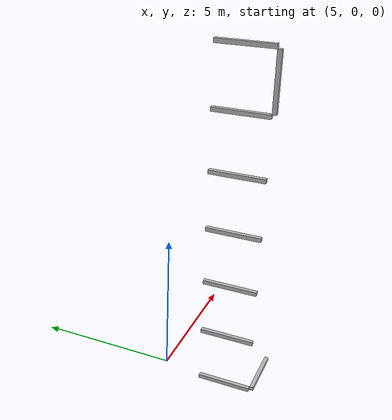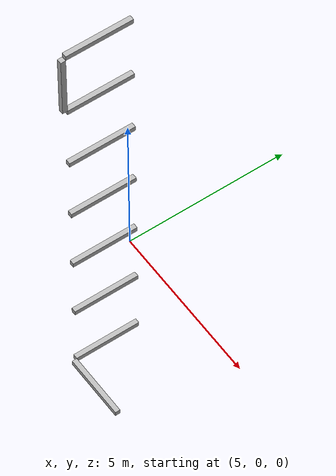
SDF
<sdf version="1.7">
 <world name="default">
  <model name="orthogonal_747_2.000.15_TS">
   <static>1</static>
   <link name="x_link_0_1_6">
    <inertial>
     <mass>1</mass>
     <inertia>
      <ixx>0.166667</ixx>
      <ixy>0</ixy>
      <ixz>0</ixz>
      <iyy>0.166667</iyy>
      <iyz>0</iyz>
      <izz>0.166667</izz>
     </inertia>
    </inertial>
    <pose>13.975 2.15 1.075 0 -0 0</pose>
    <visual name="visual_0">
     <laser_retro>288</laser_retro>
     <geometry><box><size>2 1e-06 0.15</size></box></geometry>
     <material>
      <script><name>Gazebo/Grey</name><uri>file://media/materials/scripts/gazebo.material</uri></script>
      <shader type="pixel"><normal_map>__default__</normal_map></shader>
      <ambient>0.678 0.498 0.659 1</ambient>
      <diffuse>0.7 0.7 0.7 1</diffuse>
      <specular>0.01 0.01 0.01 1</specular>
      <emissive>0 0 0 1</emissive>
     </material>
     <pose>0 -0.075 0 0 -0 0</pose>
     <transparency>1</transparency>
    </visual>
    <visual name="visual_1">
     <laser_retro>289</laser_retro>
     <geometry><box><size>2 1e-06 0.15</size></box></geometry>
     <material>
      <script><name>Gazebo/Grey</name><uri>file://media/materials/scripts/gazebo.material</uri></script>
      <shader type="pixel"><normal_map>__default__</normal_map></shader>
      <ambient>0.447 0.624 0.812 1</ambient>
      <diffuse>0.7 0.7 0.7 1</diffuse>
      <specular>0.01 0.01 0.01 1</specular>
      <emissive>0 0 0 1</emissive>
     </material>
     <pose>0 0.075 0 0 -0 0</pose>
     <transparency>1</transparency>
    </visual>
    <visual name="visual_2">
     <laser_retro>290</laser_retro>
     <geometry><box><size>2 0.15 1e-06</size></box></geometry>
     <material>
      <script><name>Gazebo/Grey</name><uri>file://media/materials/scripts/gazebo.material</uri></script>
      <shader type="pixel"><normal_map>__default__</normal_map></shader>
      <ambient>0.988 0.686 0.243 1</ambient>
      <diffuse>0.7 0.7 0.7 1</diffuse>
      <specular>0.01 0.01 0.01 1</specular>
      <emissive>0 0 0 1</emissive>
     </material>
     <pose>0 0 -0.075 0 -0 0</pose>
     <transparency>1</transparency>
    </visual>
    <visual name="visual_3">
     <laser_retro>291</laser_retro>
     <geometry><box><size>1e-06 0.15 0.15</size></box></geometry>
     <material>
      <script><name>Gazebo/Grey</name><uri>file://media/materials/scripts/gazebo.material</uri></script>
      <shader type="pixel"><normal_map>__default__</normal_map></shader>
      <ambient>0.988 0.914 0.31 1</ambient>
      <diffuse>0.7 0.7 0.7 1</diffuse>
      <specular>0.01 0.01 0.01 1</specular>
      <emissive>0 0 0 1</emissive>
     </material>
     <pose>1 0 0 0 -0 0</pose>
     <transparency>1</transparency>
    </visual>
    <visual name="visual_4">
     <laser_retro>292</laser_retro>
     <geometry><box><size>2 0.15 1e-06</size></box></geometry>
     <material>
      <script><name>Gazebo/Grey</name><uri>file://media/materials/scripts/gazebo.material</uri></script>
      <shader type="pixel"><normal_map>__default__</normal_map></shader>
      <ambient>0.937 0.161 0.161 1</ambient>
      <diffuse>0.7 0.7 0.7 1</diffuse>
      <specular>0.01 0.01 0.01 1</specular>
      <emissive>0 0 0 1</emissive>
     </material>
     <pose>0 0 0.075 0 -0 0</pose>
     <transparency>1</transparency>
    </visual>
    <visual name="visual_5">
     <laser_retro>293</laser_retro>
     <geometry><box><size>1e-06 0.15 0.15</size></box></geometry>
     <material>
      <script><name>Gazebo/Grey</name><uri>file://media/materials/scripts/gazebo.material</uri></script>
      <shader type="pixel"><normal_map>__default__</normal_map></shader>
      <ambient>0.541 0.886 0.204 1</ambient>
      <diffuse>0.7 0.7 0.7 1</diffuse>
      <specular>0.01 0.01 0.01 1</specular>
      <emissive>0 0 0 1</emissive>
     </material>
     <pose>-1 0 0 0 -0 0</pose>
     <transparency>1</transparency>
    </visual>
    <visual name="visual_texture">
     <geometry><box><size>1.9998 0.149985 0.149985</size></box></geometry>
     <material>
      <script>
       <uri>model://BASE_MODELS/simple_block_v2_textured/materials/scripts</uri>
       <uri>model://BASE_MODELS/simple_block_v2_textured/materials/textures</uri>
       <name>metal</name>
      </script>
     </material>
     <laser_retro>294</laser_retro>
    </visual>
    <collision name="collision">
     <geometry><box><size>2 0.15 0.15</size></box></geometry>
     <surface>
      <friction>
       <ode><mu>1</mu><mu2>1</mu2><fdir1>0 0 0</fdir1><slip1>0</slip1><slip2>0</slip2></ode>
       <torsional>
        <coefficient>1</coefficient>
        <patch_radius>0</patch_radius>
        <surface_radius>0</surface_radius>
        <use_patch_radius>1</use_patch_radius>
        <ode><slip>0</slip></ode>
       </torsional>
      </friction>
      <bounce><restitution_coefficient>0</restitution_coefficient><threshold>1e+06</threshold></bounce>
      <contact>
       <collide_without_contact>0</collide_without_contact>
       <collide_without_contact_bitmask>1</collide_without_contact_bitmask>
       <collide_bitmask>1</collide_bitmask>
       <ode>
        <soft_cfm>0</soft_cfm>
        <soft_erp>0.2</soft_erp>
        <kp>1e+13</kp>
        <kd>1</kd>
        <max_vel>0.01</max_vel>
        <min_depth>0</min_depth>
       </ode>
       <bullet>
        <split_impulse>1</split_impulse>
        <split_impulse_penetration_threshold>-0.01</split_impulse_penetration_threshold>
        <soft_cfm>0</soft_cfm>
        <soft_erp>0.2</soft_erp>
        <kp>1e+13</kp>
        <kd>1</kd>
       </bullet>
      </contact>
     </surface>
    </collision>
   </link>
   <link name="y_link_0_1_6">
    <inertial>
     <mass>1</mass>
     <inertia>
      <ixx>0.166667</ixx>
      <ixy>0</ixy>
      <ixz>0</ixz>
      <iyy>0.166667</iyy>
      <iyz>0</iyz>
      <izz>0.166667</izz>
     </inertia>
    </inertial>
    <pose>12.9 3.225 1.075 0 -0 0</pose>
    <visual name="visual_0">
     <laser_retro>295</laser_retro>
     <geometry><box><size>0.15 1e-06 0.15</size></box></geometry>
     <material>
      <script><name>Gazebo/Grey</name><uri>file://media/materials/scripts/gazebo.material</uri></script>
      <shader type="pixel"><normal_map>__default__</normal_map></shader>
      <ambient>0.678 0.498 0.659 1</ambient>
      <diffuse>0.7 0.7 0.7 1</diffuse>
      <specular>0.01 0.01 0.01 1</specular>
      <emissive>0 0 0 1</emissive>
     </material>
     <pose>0 -1 0 0 -0 0</pose>
     <transparency>1</transparency>
    </visual>
    <visual name="visual_1">
     <laser_retro>296</laser_retro>
     <geometry><box><size>0.15 1e-06 0.15</size></box></geometry>
     <material>
      <script><name>Gazebo/Grey</name><uri>file://media/materials/scripts/gazebo.material</uri></script>
      <shader type="pixel"><normal_map>__default__</normal_map></shader>
      <ambient>0.447 0.624 0.812 1</ambient>
      <diffuse>0.7 0.7 0.7 1</diffuse>
      <specular>0.01 0.01 0.01 1</specular>
      <emissive>0 0 0 1</emissive>
     </material>
     <pose>0 1 0 0 -0 0</pose>
     <transparency>1</transparency>
    </visual>
    <visual name="visual_2">
     <laser_retro>297</laser_retro>
     <geometry><box><size>0.15 2 1e-06</size></box></geometry>
     <material>
      <script><name>Gazebo/Grey</name><uri>file://media/materials/scripts/gazebo.material</uri></script>
      <shader type="pixel"><normal_map>__default__</normal_map></shader>
      <ambient>0.988 0.686 0.243 1</ambient>
      <diffuse>0.7 0.7 0.7 1</diffuse>
      <specular>0.01 0.01 0.01 1</specular>
      <emissive>0 0 0 1</emissive>
     </material>
     <pose>0 0 -0.075 0 -0 0</pose>
     <transparency>1</transparency>
    </visual>
    <visual name="visual_3">
     <laser_retro>298</laser_retro>
     <geometry><box><size>1e-06 2 0.15</size></box></geometry>
     <material>
      <script><name>Gazebo/Grey</name><uri>file://media/materials/scripts/gazebo.material</uri></script>
      <shader type="pixel"><normal_map>__default__</normal_map></shader>
      <ambient>0.988 0.914 0.31 1</ambient>
      <diffuse>0.7 0.7 0.7 1</diffuse>
      <specular>0.01 0.01 0.01 1</specular>
      <emissive>0 0 0 1</emissive>
     </material>
     <pose>0.075 0 0 0 -0 0</pose>
     <transparency>1</transparency>
    </visual>
    <visual name="visual_4">
     <laser_retro>299</laser_retro>
     <geometry><box><size>0.15 2 1e-06</size></box></geometry>
     <material>
      <script><name>Gazebo/Grey</name><uri>file://media/materials/scripts/gazebo.material</uri></script>
      <shader type="pixel"><normal_map>__default__</normal_map></shader>
      <ambient>0.937 0.161 0.161 1</ambient>
      <diffuse>0.7 0.7 0.7 1</diffuse>
      <specular>0.01 0.01 0.01 1</specular>
      <emissive>0 0 0 1</emissive>
     </material>
     <pose>0 0 0.075 0 -0 0</pose>
     <transparency>1</transparency>
    </visual>
    <visual name="visual_5">
     <laser_retro>300</laser_retro>
     <geometry><box><size>1e-06 2 0.15</size></box></geometry>
     <material>
      <script><name>Gazebo/Grey</name><uri>file://media/materials/scripts/gazebo.material</uri></script>
      <shader type="pixel"><normal_map>__default__</normal_map></shader>
      <ambient>0.541 0.886 0.204 1</ambient>
      <diffuse>0.7 0.7 0.7 1</diffuse>
      <specular>0.01 0.01 0.01 1</specular>
      <emissive>0 0 0 1</emissive>
     </material>
     <pose>-0.075 0 0 0 -0 0</pose>
     <transparency>1</transparency>
    </visual>
    <visual name="visual_texture">
     <geometry><box><size>0.149985 1.9998 0.149985</size></box></geometry>
     <material>
      <script>
       <uri>model://BASE_MODELS/simple_block_v2_textured/materials/scripts</uri>
       <uri>model://BASE_MODELS/simple_block_v2_textured/materials/textures</uri>
       <name>metal</name>
      </script>
     </material>
     <laser_retro>301</laser_retro>
    </visual>
    <collision name="collision">
     <geometry><box><size>0.15 2 0.15</size></box></geometry>
     <surface>
      <friction>
       <ode><mu>1</mu><mu2>1</mu2><fdir1>0 0 0</fdir1><slip1>0</slip1><slip2>0</slip2></ode>
       <torsional>
        <coefficient>1</coefficient>
        <patch_radius>0</patch_radius>
        <surface_radius>0</surface_radius>
        <use_patch_radius>1</use_patch_radius>
        <ode><slip>0</slip></ode>
       </torsional>
      </friction>
      <bounce><restitution_coefficient>0</restitution_coefficient><threshold>1e+06</threshold></bounce>
      <contact>
       <collide_without_contact>0</collide_without_contact>
       <collide_without_contact_bitmask>1</collide_without_contact_bitmask>
       <collide_bitmask>1</collide_bitmask>
       <ode>
        <soft_cfm>0</soft_cfm>
        <soft_erp>0.2</soft_erp>
        <kp>1e+13</kp>
        <kd>1</kd>
        <max_vel>0.01</max_vel>
        <min_depth>0</min_depth>
       </ode>
       <bullet>
        <split_impulse>1</split_impulse>
        <split_impulse_penetration_threshold>-0.01</split_impulse_penetration_threshold>
        <soft_cfm>0</soft_cfm>
        <soft_erp>0.2</soft_erp>
        <kp>1e+13</kp>
        <kd>1</kd>
       </bullet>
      </contact>
     </surface>
    </collision>
   </link>
   <link name="y_link_1_1_6">
    <inertial>
     <mass>1</mass>
     <inertia>
      <ixx>0.166667</ixx>
      <ixy>0</ixy>
      <ixz>0</ixz>
      <iyy>0.166667</iyy>
      <iyz>0</iyz>
      <izz>0.166667</izz>
     </inertia>
    </inertial>
    <pose>12.9 3.225 3.225 0 -0 0</pose>
    <visual name="visual_0">
     <laser_retro>1107</laser_retro>
     <geometry><box><size>0.15 1e-06 0.15</size></box></geometry>
     <material>
      <script><name>Gazebo/Grey</name><uri>file://media/materials/scripts/gazebo.material</uri></script>
      <shader type="pixel"><normal_map>__default__</normal_map></shader>
      <ambient>0.678 0.498 0.659 1</ambient>
      <diffuse>0.7 0.7 0.7 1</diffuse>
      <specular>0.01 0.01 0.01 1</specular>
      <emissive>0 0 0 1</emissive>
     </material>
     <pose>0 -1 0 0 -0 0</pose>
     <transparency>1</transparency>
    </visual>
    <visual name="visual_1">
     <laser_retro>1108</laser_retro>
     <geometry><box><size>0.15 1e-06 0.15</size></box></geometry>
     <material>
      <script><name>Gazebo/Grey</name><uri>file://media/materials/scripts/gazebo.material</uri></script>
      <shader type="pixel"><normal_map>__default__</normal_map></shader>
      <ambient>0.447 0.624 0.812 1</ambient>
      <diffuse>0.7 0.7 0.7 1</diffuse>
      <specular>0.01 0.01 0.01 1</specular>
      <emissive>0 0 0 1</emissive>
     </material>
     <pose>0 1 0 0 -0 0</pose>
     <transparency>1</transparency>
    </visual>
    <visual name="visual_2">
     <laser_retro>1109</laser_retro>
     <geometry><box><size>0.15 2 1e-06</size></box></geometry>
     <material>
      <script><name>Gazebo/Grey</name><uri>file://media/materials/scripts/gazebo.material</uri></script>
      <shader type="pixel"><normal_map>__default__</normal_map></shader>
      <ambient>0.988 0.686 0.243 1</ambient>
      <diffuse>0.7 0.7 0.7 1</diffuse>
      <specular>0.01 0.01 0.01 1</specular>
      <emissive>0 0 0 1</emissive>
     </material>
     <pose>0 0 -0.075 0 -0 0</pose>
     <transparency>1</transparency>
    </visual>
    <visual name="visual_3">
     <laser_retro>1110</laser_retro>
     <geometry><box><size>1e-06 2 0.15</size></box></geometry>
     <material>
      <script><name>Gazebo/Grey</name><uri>file://media/materials/scripts/gazebo.material</uri></script>
      <shader type="pixel"><normal_map>__default__</normal_map></shader>
      <ambient>0.988 0.914 0.31 1</ambient>
      <diffuse>0.7 0.7 0.7 1</diffuse>
      <specular>0.01 0.01 0.01 1</specular>
      <emissive>0 0 0 1</emissive>
     </material>
     <pose>0.075 0 0 0 -0 0</pose>
     <transparency>1</transparency>
    </visual>
    <visual name="visual_4">
     <laser_retro>1111</laser_retro>
     <geometry><box><size>0.15 2 1e-06</size></box></geometry>
     <material>
      <script><name>Gazebo/Grey</name><uri>file://media/materials/scripts/gazebo.material</uri></script>
      <shader type="pixel"><normal_map>__default__</normal_map></shader>
      <ambient>0.937 0.161 0.161 1</ambient>
      <diffuse>0.7 0.7 0.7 1</diffuse>
      <specular>0.01 0.01 0.01 1</specular>
      <emissive>0 0 0 1</emissive>
     </material>
     <pose>0 0 0.075 0 -0 0</pose>
     <transparency>1</transparency>
    </visual>
    <visual name="visual_5">
     <laser_retro>1112</laser_retro>
     <geometry><box><size>1e-06 2 0.15</size></box></geometry>
     <material>
      <script><name>Gazebo/Grey</name><uri>file://media/materials/scripts/gazebo.material</uri></script>
      <shader type="pixel"><normal_map>__default__</normal_map></shader>
      <ambient>0.541 0.886 0.204 1</ambient>
      <diffuse>0.7 0.7 0.7 1</diffuse>
      <specular>0.01 0.01 0.01 1</specular>
      <emissive>0 0 0 1</emissive>
     </material>
     <pose>-0.075 0 0 0 -0 0</pose>
     <transparency>1</transparency>
    </visual>
    <visual name="visual_texture">
     <geometry><box><size>0.149985 1.9998 0.149985</size></box></geometry>
     <material>
      <script>
       <uri>model://BASE_MODELS/simple_block_v2_textured/materials/scripts</uri>
       <uri>model://BASE_MODELS/simple_block_v2_textured/materials/textures</uri>
       <name>metal</name>
      </script>
     </material>
     <laser_retro>1113</laser_retro>
    </visual>
    <collision name="collision">
     <geometry><box><size>0.15 2 0.15</size></box></geometry>
     <surface>
      <friction>
       <ode><mu>1</mu><mu2>1</mu2><fdir1>0 0 0</fdir1><slip1>0</slip1><slip2>0</slip2></ode>
       <torsional>
        <coefficient>1</coefficient>
        <patch_radius>0</patch_radius>
        <surface_radius>0</surface_radius>
        <use_patch_radius>1</use_patch_radius>
        <ode><slip>0</slip></ode>
       </torsional>
      </friction>
      <bounce><restitution_coefficient>0</restitution_coefficient><threshold>1e+06</threshold></bounce>
      <contact>
       <collide_without_contact>0</collide_without_contact>
       <collide_without_contact_bitmask>1</collide_without_contact_bitmask>
       <collide_bitmask>1</collide_bitmask>
       <ode>
        <soft_cfm>0</soft_cfm>
        <soft_erp>0.2</soft_erp>
        <kp>1e+13</kp>
        <kd>1</kd>
        <max_vel>0.01</max_vel>
        <min_depth>0</min_depth>
       </ode>
       <bullet>
        <split_impulse>1</split_impulse>
        <split_impulse_penetration_threshold>-0.01</split_impulse_penetration_threshold>
        <soft_cfm>0</soft_cfm>
        <soft_erp>0.2</soft_erp>
        <kp>1e+13</kp>
        <kd>1</kd>
       </bullet>
      </contact>
     </surface>
    </collision>
   </link>
   <link name="y_link_2_1_6">
    <inertial>
     <mass>1</mass>
     <inertia>
      <ixx>0.166667</ixx>
      <ixy>0</ixy>
      <ixz>0</ixz>
      <iyy>0.166667</iyy>
      <iyz>0</iyz>
      <izz>0.166667</izz>
     </inertia>
    </inertial>
    <pose>12.9 3.225 5.375 0 -0 0</pose>
    <visual name="visual_0">
     <laser_retro>2010</laser_retro>
     <geometry><box><size>0.15 1e-06 0.15</size></box></geometry>
     <material>
      <script><name>Gazebo/Grey</name><uri>file://media/materials/scripts/gazebo.material</uri></script>
      <shader type="pixel"><normal_map>__default__</normal_map></shader>
      <ambient>0.678 0.498 0.659 1</ambient>
      <diffuse>0.7 0.7 0.7 1</diffuse>
      <specular>0.01 0.01 0.01 1</specular>
      <emissive>0 0 0 1</emissive>
     </material>
     <pose>0 -1 0 0 -0 0</pose>
     <transparency>1</transparency>
    </visual>
    <visual name="visual_1">
     <laser_retro>2011</laser_retro>
     <geometry><box><size>0.15 1e-06 0.15</size></box></geometry>
     <material>
      <script><name>Gazebo/Grey</name><uri>file://media/materials/scripts/gazebo.material</uri></script>
      <shader type="pixel"><normal_map>__default__</normal_map></shader>
      <ambient>0.447 0.624 0.812 1</ambient>
      <diffuse>0.7 0.7 0.7 1</diffuse>
      <specular>0.01 0.01 0.01 1</specular>
      <emissive>0 0 0 1</emissive>
     </material>
     <pose>0 1 0 0 -0 0</pose>
     <transparency>1</transparency>
    </visual>
    <visual name="visual_2">
     <laser_retro>2012</laser_retro>
     <geometry><box><size>0.15 2 1e-06</size></box></geometry>
     <material>
      <script><name>Gazebo/Grey</name><uri>file://media/materials/scripts/gazebo.material</uri></script>
      <shader type="pixel"><normal_map>__default__</normal_map></shader>
      <ambient>0.988 0.686 0.243 1</ambient>
      <diffuse>0.7 0.7 0.7 1</diffuse>
      <specular>0.01 0.01 0.01 1</specular>
      <emissive>0 0 0 1</emissive>
     </material>
     <pose>0 0 -0.075 0 -0 0</pose>
     <transparency>1</transparency>
    </visual>
    <visual name="visual_3">
     <laser_retro>2013</laser_retro>
     <geometry><box><size>1e-06 2 0.15</size></box></geometry>
     <material>
      <script><name>Gazebo/Grey</name><uri>file://media/materials/scripts/gazebo.material</uri></script>
      <shader type="pixel"><normal_map>__default__</normal_map></shader>
      <ambient>0.988 0.914 0.31 1</ambient>
      <diffuse>0.7 0.7 0.7 1</diffuse>
      <specular>0.01 0.01 0.01 1</specular>
      <emissive>0 0 0 1</emissive>
     </material>
     <pose>0.075 0 0 0 -0 0</pose>
     <transparency>1</transparency>
    </visual>
    <visual name="visual_4">
     <laser_retro>2014</laser_retro>
     <geometry><box><size>0.15 2 1e-06</size></box></geometry>
     <material>
      <script><name>Gazebo/Grey</name><uri>file://media/materials/scripts/gazebo.material</uri></script>
      <shader type="pixel"><normal_map>__default__</normal_map></shader>
      <ambient>0.937 0.161 0.161 1</ambient>
      <diffuse>0.7 0.7 0.7 1</diffuse>
      <specular>0.01 0.01 0.01 1</specular>
      <emissive>0 0 0 1</emissive>
     </material>
     <pose>0 0 0.075 0 -0 0</pose>
     <transparency>1</transparency>
    </visual>
    <visual name="visual_5">
     <laser_retro>2015</laser_retro>
     <geometry><box><size>1e-06 2 0.15</size></box></geometry>
     <material>
      <script><name>Gazebo/Grey</name><uri>file://media/materials/scripts/gazebo.material</uri></script>
      <shader type="pixel"><normal_map>__default__</normal_map></shader>
      <ambient>0.541 0.886 0.204 1</ambient>
      <diffuse>0.7 0.7 0.7 1</diffuse>
      <specular>0.01 0.01 0.01 1</specular>
      <emissive>0 0 0 1</emissive>
     </material>
     <pose>-0.075 0 0 0 -0 0</pose>
     <transparency>1</transparency>
    </visual>
    <visual name="visual_texture">
     <geometry><box><size>0.149985 1.9998 0.149985</size></box></geometry>
     <material>
      <script>
       <uri>model://BASE_MODELS/simple_block_v2_textured/materials/scripts</uri>
       <uri>model://BASE_MODELS/simple_block_v2_textured/materials/textures</uri>
       <name>metal</name>
      </script>
     </material>
     <laser_retro>2016</laser_retro>
    </visual>
    <collision name="collision">
     <geometry><box><size>0.15 2 0.15</size></box></geometry>
     <surface>
      <friction>
       <ode><mu>1</mu><mu2>1</mu2><fdir1>0 0 0</fdir1><slip1>0</slip1><slip2>0</slip2></ode>
       <torsional>
        <coefficient>1</coefficient>
        <patch_radius>0</patch_radius>
        <surface_radius>0</surface_radius>
        <use_patch_radius>1</use_patch_radius>
        <ode><slip>0</slip></ode>
       </torsional>
      </friction>
      <bounce><restitution_coefficient>0</restitution_coefficient><threshold>1e+06</threshold></bounce>
      <contact>
       <collide_without_contact>0</collide_without_contact>
       <collide_without_contact_bitmask>1</collide_without_contact_bitmask>
       <collide_bitmask>1</collide_bitmask>
       <ode>
        <soft_cfm>0</soft_cfm>
        <soft_erp>0.2</soft_erp>
        <kp>1e+13</kp>
        <kd>1</kd>
        <max_vel>0.01</max_vel>
        <min_depth>0</min_depth>
       </ode>
       <bullet>
        <split_impulse>1</split_impulse>
        <split_impulse_penetration_threshold>-0.01</split_impulse_penetration_threshold>
        <soft_cfm>0</soft_cfm>
        <soft_erp>0.2</soft_erp>
        <kp>1e+13</kp>
        <kd>1</kd>
       </bullet>
      </contact>
     </surface>
    </collision>
   </link>
   <link name="y_link_3_1_6">
    <inertial>
     <mass>1</mass>
     <inertia>
      <ixx>0.166667</ixx>
      <ixy>0</ixy>
      <ixz>0</ixz>
      <iyy>0.166667</iyy>
      <iyz>0</iyz>
      <izz>0.166667</izz>
     </inertia>
    </inertial>
    <pose>12.9 3.225 7.525 0 -0 0</pose>
    <visual name="visual_0">
     <laser_retro>2913</laser_retro>
     <geometry><box><size>0.15 1e-06 0.15</size></box></geometry>
     <material>
      <script><name>Gazebo/Grey</name><uri>file://media/materials/scripts/gazebo.material</uri></script>
      <shader type="pixel"><normal_map>__default__</normal_map></shader>
      <ambient>0.678 0.498 0.659 1</ambient>
      <diffuse>0.7 0.7 0.7 1</diffuse>
      <specular>0.01 0.01 0.01 1</specular>
      <emissive>0 0 0 1</emissive>
     </material>
     <pose>0 -1 0 0 -0 0</pose>
     <transparency>1</transparency>
    </visual>
    <visual name="visual_1">
     <laser_retro>2914</laser_retro>
     <geometry><box><size>0.15 1e-06 0.15</size></box></geometry>
     <material>
      <script><name>Gazebo/Grey</name><uri>file://media/materials/scripts/gazebo.material</uri></script>
      <shader type="pixel"><normal_map>__default__</normal_map></shader>
      <ambient>0.447 0.624 0.812 1</ambient>
      <diffuse>0.7 0.7 0.7 1</diffuse>
      <specular>0.01 0.01 0.01 1</specular>
      <emissive>0 0 0 1</emissive>
     </material>
     <pose>0 1 0 0 -0 0</pose>
     <transparency>1</transparency>
    </visual>
    <visual name="visual_2">
     <laser_retro>2915</laser_retro>
     <geometry><box><size>0.15 2 1e-06</size></box></geometry>
     <material>
      <script><name>Gazebo/Grey</name><uri>file://media/materials/scripts/gazebo.material</uri></script>
      <shader type="pixel"><normal_map>__default__</normal_map></shader>
      <ambient>0.988 0.686 0.243 1</ambient>
      <diffuse>0.7 0.7 0.7 1</diffuse>
      <specular>0.01 0.01 0.01 1</specular>
      <emissive>0 0 0 1</emissive>
     </material>
     <pose>0 0 -0.075 0 -0 0</pose>
     <transparency>1</transparency>
    </visual>
    <visual name="visual_3">
     <laser_retro>2916</laser_retro>
     <geometry><box><size>1e-06 2 0.15</size></box></geometry>
     <material>
      <script><name>Gazebo/Grey</name><uri>file://media/materials/scripts/gazebo.material</uri></script>
      <shader type="pixel"><normal_map>__default__</normal_map></shader>
      <ambient>0.988 0.914 0.31 1</ambient>
      <diffuse>0.7 0.7 0.7 1</diffuse>
      <specular>0.01 0.01 0.01 1</specular>
      <emissive>0 0 0 1</emissive>
     </material>
     <pose>0.075 0 0 0 -0 0</pose>
     <transparency>1</transparency>
    </visual>
    <visual name="visual_4">
     <laser_retro>2917</laser_retro>
     <geometry><box><size>0.15 2 1e-06</size></box></geometry>
     <material>
      <script><name>Gazebo/Grey</name><uri>file://media/materials/scripts/gazebo.material</uri></script>
      <shader type="pixel"><normal_map>__default__</normal_map></shader>
      <ambient>0.937 0.161 0.161 1</ambient>
      <diffuse>0.7 0.7 0.7 1</diffuse>
      <specular>0.01 0.01 0.01 1</specular>
      <emissive>0 0 0 1</emissive>
     </material>
     <pose>0 0 0.075 0 -0 0</pose>
     <transparency>1</transparency>
    </visual>
    <visual name="visual_5">
     <laser_retro>2918</laser_retro>
     <geometry><box><size>1e-06 2 0.15</size></box></geometry>
     <material>
      <script><name>Gazebo/Grey</name><uri>file://media/materials/scripts/gazebo.material</uri></script>
      <shader type="pixel"><normal_map>__default__</normal_map></shader>
      <ambient>0.541 0.886 0.204 1</ambient>
      <diffuse>0.7 0.7 0.7 1</diffuse>
      <specular>0.01 0.01 0.01 1</specular>
      <emissive>0 0 0 1</emissive>
     </material>
     <pose>-0.075 0 0 0 -0 0</pose>
     <transparency>1</transparency>
    </visual>
    <visual name="visual_texture">
     <geometry><box><size>0.149985 1.9998 0.149985</size></box></geometry>
     <material>
      <script>
       <uri>model://BASE_MODELS/simple_block_v2_textured/materials/scripts</uri>
       <uri>model://BASE_MODELS/simple_block_v2_textured/materials/textures</uri>
       <name>metal</name>
      </script>
     </material>
     <laser_retro>2919</laser_retro>
    </visual>
    <collision name="collision">
     <geometry><box><size>0.15 2 0.15</size></box></geometry>
     <surface>
      <friction>
       <ode><mu>1</mu><mu2>1</mu2><fdir1>0 0 0</fdir1><slip1>0</slip1><slip2>0</slip2></ode>
       <torsional>
        <coefficient>1</coefficient>
        <patch_radius>0</patch_radius>
        <surface_radius>0</surface_radius>
        <use_patch_radius>1</use_patch_radius>
        <ode><slip>0</slip></ode>
       </torsional>
      </friction>
      <bounce><restitution_coefficient>0</restitution_coefficient><threshold>1e+06</threshold></bounce>
      <contact>
       <collide_without_contact>0</collide_without_contact>
       <collide_without_contact_bitmask>1</collide_without_contact_bitmask>
       <collide_bitmask>1</collide_bitmask>
       <ode>
        <soft_cfm>0</soft_cfm>
        <soft_erp>0.2</soft_erp>
        <kp>1e+13</kp>
        <kd>1</kd>
        <max_vel>0.01</max_vel>
        <min_depth>0</min_depth>
       </ode>
       <bullet>
        <split_impulse>1</split_impulse>
        <split_impulse_penetration_threshold>-0.01</split_impulse_penetration_threshold>
        <soft_cfm>0</soft_cfm>
        <soft_erp>0.2</soft_erp>
        <kp>1e+13</kp>
        <kd>1</kd>
       </bullet>
      </contact>
     </surface>
    </collision>
   </link>
   <link name="y_link_4_1_6">
    <inertial>
     <mass>1</mass>
     <inertia>
      <ixx>0.166667</ixx>
      <ixy>0</ixy>
      <ixz>0</ixz>
      <iyy>0.166667</iyy>
      <iyz>0</iyz>
      <izz>0.166667</izz>
     </inertia>
    </inertial>
    <pose>12.9 3.225 9.675 0 -0 0</pose>
    <visual name="visual_0">
     <laser_retro>3816</laser_retro>
     <geometry><box><size>0.15 1e-06 0.15</size></box></geometry>
     <material>
      <script><name>Gazebo/Grey</name><uri>file://media/materials/scripts/gazebo.material</uri></script>
      <shader type="pixel"><normal_map>__default__</normal_map></shader>
      <ambient>0.678 0.498 0.659 1</ambient>
      <diffuse>0.7 0.7 0.7 1</diffuse>
      <specular>0.01 0.01 0.01 1</specular>
      <emissive>0 0 0 1</emissive>
     </material>
     <pose>0 -1 0 0 -0 0</pose>
     <transparency>1</transparency>
    </visual>
    <visual name="visual_1">
     <laser_retro>3817</laser_retro>
     <geometry><box><size>0.15 1e-06 0.15</size></box></geometry>
     <material>
      <script><name>Gazebo/Grey</name><uri>file://media/materials/scripts/gazebo.material</uri></script>
      <shader type="pixel"><normal_map>__default__</normal_map></shader>
      <ambient>0.447 0.624 0.812 1</ambient>
      <diffuse>0.7 0.7 0.7 1</diffuse>
      <specular>0.01 0.01 0.01 1</specular>
      <emissive>0 0 0 1</emissive>
     </material>
     <pose>0 1 0 0 -0 0</pose>
     <transparency>1</transparency>
    </visual>
    <visual name="visual_2">
     <laser_retro>3818</laser_retro>
     <geometry><box><size>0.15 2 1e-06</size></box></geometry>
     <material>
      <script><name>Gazebo/Grey</name><uri>file://media/materials/scripts/gazebo.material</uri></script>
      <shader type="pixel"><normal_map>__default__</normal_map></shader>
      <ambient>0.988 0.686 0.243 1</ambient>
      <diffuse>0.7 0.7 0.7 1</diffuse>
      <specular>0.01 0.01 0.01 1</specular>
      <emissive>0 0 0 1</emissive>
     </material>
     <pose>0 0 -0.075 0 -0 0</pose>
     <transparency>1</transparency>
    </visual>
    <visual name="visual_3">
     <laser_retro>3819</laser_retro>
     <geometry><box><size>1e-06 2 0.15</size></box></geometry>
     <material>
      <script><name>Gazebo/Grey</name><uri>file://media/materials/scripts/gazebo.material</uri></script>
      <shader type="pixel"><normal_map>__default__</normal_map></shader>
      <ambient>0.988 0.914 0.31 1</ambient>
      <diffuse>0.7 0.7 0.7 1</diffuse>
      <specular>0.01 0.01 0.01 1</specular>
      <emissive>0 0 0 1</emissive>
     </material>
     <pose>0.075 0 0 0 -0 0</pose>
     <transparency>1</transparency>
    </visual>
    <visual name="visual_4">
     <laser_retro>3820</laser_retro>
     <geometry><box><size>0.15 2 1e-06</size></box></geometry>
     <material>
      <script><name>Gazebo/Grey</name><uri>file://media/materials/scripts/gazebo.material</uri></script>
      <shader type="pixel"><normal_map>__default__</normal_map></shader>
      <ambient>0.937 0.161 0.161 1</ambient>
      <diffuse>0.7 0.7 0.7 1</diffuse>
      <specular>0.01 0.01 0.01 1</specular>
      <emissive>0 0 0 1</emissive>
     </material>
     <pose>0 0 0.075 0 -0 0</pose>
     <transparency>1</transparency>
    </visual>
    <visual name="visual_5">
     <laser_retro>3821</laser_retro>
     <geometry><box><size>1e-06 2 0.15</size></box></geometry>
     <material>
      <script><name>Gazebo/Grey</name><uri>file://media/materials/scripts/gazebo.material</uri></script>
      <shader type="pixel"><normal_map>__default__</normal_map></shader>
      <ambient>0.541 0.886 0.204 1</ambient>
      <diffuse>0.7 0.7 0.7 1</diffuse>
      <specular>0.01 0.01 0.01 1</specular>
      <emissive>0 0 0 1</emissive>
     </material>
     <pose>-0.075 0 0 0 -0 0</pose>
     <transparency>1</transparency>
    </visual>
    <visual name="visual_texture">
     <geometry><box><size>0.149985 1.9998 0.149985</size></box></geometry>
     <material>
      <script>
       <uri>model://BASE_MODELS/simple_block_v2_textured/materials/scripts</uri>
       <uri>model://BASE_MODELS/simple_block_v2_textured/materials/textures</uri>
       <name>metal</name>
      </script>
     </material>
     <laser_retro>3822</laser_retro>
    </visual>
    <collision name="collision">
     <geometry><box><size>0.15 2 0.15</size></box></geometry>
     <surface>
      <friction>
       <ode><mu>1</mu><mu2>1</mu2><fdir1>0 0 0</fdir1><slip1>0</slip1><slip2>0</slip2></ode>
       <torsional>
        <coefficient>1</coefficient>
        <patch_radius>0</patch_radius>
        <surface_radius>0</surface_radius>
        <use_patch_radius>1</use_patch_radius>
        <ode><slip>0</slip></ode>
       </torsional>
      </friction>
      <bounce><restitution_coefficient>0</restitution_coefficient><threshold>1e+06</threshold></bounce>
      <contact>
       <collide_without_contact>0</collide_without_contact>
       <collide_without_contact_bitmask>1</collide_without_contact_bitmask>
       <collide_bitmask>1</collide_bitmask>
       <ode>
        <soft_cfm>0</soft_cfm>
        <soft_erp>0.2</soft_erp>
        <kp>1e+13</kp>
        <kd>1</kd>
        <max_vel>0.01</max_vel>
        <min_depth>0</min_depth>
       </ode>
       <bullet>
        <split_impulse>1</split_impulse>
        <split_impulse_penetration_threshold>-0.01</split_impulse_penetration_threshold>
        <soft_cfm>0</soft_cfm>
        <soft_erp>0.2</soft_erp>
        <kp>1e+13</kp>
        <kd>1</kd>
       </bullet>
      </contact>
     </surface>
    </collision>
   </link>
   <link name="y_link_5_1_6">
    <inertial>
     <mass>1</mass>
     <inertia>
      <ixx>0.166667</ixx>
      <ixy>0</ixy>
      <ixz>0</ixz>
      <iyy>0.166667</iyy>
      <iyz>0</iyz>
      <izz>0.166667</izz>
     </inertia>
    </inertial>
    <pose>12.9 3.225 11.825 0 -0 0</pose>
    <visual name="visual_0">
     <laser_retro>4719</laser_retro>
     <geometry><box><size>0.15 1e-06 0.15</size></box></geometry>
     <material>
      <script><name>Gazebo/Grey</name><uri>file://media/materials/scripts/gazebo.material</uri></script>
      <shader type="pixel"><normal_map>__default__</normal_map></shader>
      <ambient>0.678 0.498 0.659 1</ambient>
      <diffuse>0.7 0.7 0.7 1</diffuse>
      <specular>0.01 0.01 0.01 1</specular>
      <emissive>0 0 0 1</emissive>
     </material>
     <pose>0 -1 0 0 -0 0</pose>
     <transparency>1</transparency>
    </visual>
    <visual name="visual_1">
     <laser_retro>4720</laser_retro>
     <geometry><box><size>0.15 1e-06 0.15</size></box></geometry>
     <material>
      <script><name>Gazebo/Grey</name><uri>file://media/materials/scripts/gazebo.material</uri></script>
      <shader type="pixel"><normal_map>__default__</normal_map></shader>
      <ambient>0.447 0.624 0.812 1</ambient>
      <diffuse>0.7 0.7 0.7 1</diffuse>
      <specular>0.01 0.01 0.01 1</specular>
      <emissive>0 0 0 1</emissive>
     </material>
     <pose>0 1 0 0 -0 0</pose>
     <transparency>1</transparency>
    </visual>
    <visual name="visual_2">
     <laser_retro>4721</laser_retro>
     <geometry><box><size>0.15 2 1e-06</size></box></geometry>
     <material>
      <script><name>Gazebo/Grey</name><uri>file://media/materials/scripts/gazebo.material</uri></script>
      <shader type="pixel"><normal_map>__default__</normal_map></shader>
      <ambient>0.988 0.686 0.243 1</ambient>
      <diffuse>0.7 0.7 0.7 1</diffuse>
      <specular>0.01 0.01 0.01 1</specular>
      <emissive>0 0 0 1</emissive>
     </material>
     <pose>0 0 -0.075 0 -0 0</pose>
     <transparency>1</transparency>
    </visual>
    <visual name="visual_3">
     <laser_retro>4722</laser_retro>
     <geometry><box><size>1e-06 2 0.15</size></box></geometry>
     <material>
      <script><name>Gazebo/Grey</name><uri>file://media/materials/scripts/gazebo.material</uri></script>
      <shader type="pixel"><normal_map>__default__</normal_map></shader>
      <ambient>0.988 0.914 0.31 1</ambient>
      <diffuse>0.7 0.7 0.7 1</diffuse>
      <specular>0.01 0.01 0.01 1</specular>
      <emissive>0 0 0 1</emissive>
     </material>
     <pose>0.075 0 0 0 -0 0</pose>
     <transparency>1</transparency>
    </visual>
    <visual name="visual_4">
     <laser_retro>4723</laser_retro>
     <geometry><box><size>0.15 2 1e-06</size></box></geometry>
     <material>
      <script><name>Gazebo/Grey</name><uri>file://media/materials/scripts/gazebo.material</uri></script>
      <shader type="pixel"><normal_map>__default__</normal_map></shader>
      <ambient>0.937 0.161 0.161 1</ambient>
      <diffuse>0.7 0.7 0.7 1</diffuse>
      <specular>0.01 0.01 0.01 1</specular>
      <emissive>0 0 0 1</emissive>
     </material>
     <pose>0 0 0.075 0 -0 0</pose>
     <transparency>1</transparency>
    </visual>
    <visual name="visual_5">
     <laser_retro>4724</laser_retro>
     <geometry><box><size>1e-06 2 0.15</size></box></geometry>
     <material>
      <script><name>Gazebo/Grey</name><uri>file://media/materials/scripts/gazebo.material</uri></script>
      <shader type="pixel"><normal_map>__default__</normal_map></shader>
      <ambient>0.541 0.886 0.204 1</ambient>
      <diffuse>0.7 0.7 0.7 1</diffuse>
      <specular>0.01 0.01 0.01 1</specular>
      <emissive>0 0 0 1</emissive>
     </material>
     <pose>-0.075 0 0 0 -0 0</pose>
     <transparency>1</transparency>
    </visual>
    <visual name="visual_texture">
     <geometry><box><size>0.149985 1.9998 0.149985</size></box></geometry>
     <material>
      <script>
       <uri>model://BASE_MODELS/simple_block_v2_textured/materials/scripts</uri>
       <uri>model://BASE_MODELS/simple_block_v2_textured/materials/textures</uri>
       <name>metal</name>
      </script>
     </material>
     <laser_retro>4725</laser_retro>
    </visual>
    <collision name="collision">
     <geometry><box><size>0.15 2 0.15</size></box></geometry>
     <surface>
      <friction>
       <ode><mu>1</mu><mu2>1</mu2><fdir1>0 0 0</fdir1><slip1>0</slip1><slip2>0</slip2></ode>
       <torsional>
        <coefficient>1</coefficient>
        <patch_radius>0</patch_radius>
        <surface_radius>0</surface_radius>
        <use_patch_radius>1</use_patch_radius>
        <ode><slip>0</slip></ode>
       </torsional>
      </friction>
      <bounce><restitution_coefficient>0</restitution_coefficient><threshold>1e+06</threshold></bounce>
      <contact>
       <collide_without_contact>0</collide_without_contact>
       <collide_without_contact_bitmask>1</collide_without_contact_bitmask>
       <collide_bitmask>1</collide_bitmask>
       <ode>
        <soft_cfm>0</soft_cfm>
        <soft_erp>0.2</soft_erp>
        <kp>1e+13</kp>
        <kd>1</kd>
        <max_vel>0.01</max_vel>
        <min_depth>0</min_depth>
       </ode>
       <bullet>
        <split_impulse>1</split_impulse>
        <split_impulse_penetration_threshold>-0.01</split_impulse_penetration_threshold>
        <soft_cfm>0</soft_cfm>
        <soft_erp>0.2</soft_erp>
        <kp>1e+13</kp>
        <kd>1</kd>
       </bullet>
      </contact>
     </surface>
    </collision>
   </link>
   <link name="y_link_6_1_6">
    <inertial>
     <mass>1</mass>
     <inertia>
      <ixx>0.166667</ixx>
      <ixy>0</ixy>
      <ixz>0</ixz>
      <iyy>0.166667</iyy>
      <iyz>0</iyz>
      <izz>0.166667</izz>
     </inertia>
    </inertial>
    <pose>12.9 3.225 13.975 0 -0 0</pose>
    <visual name="visual_0">
     <laser_retro>5657</laser_retro>
     <geometry><box><size>0.15 1e-06 0.15</size></box></geometry>
     <material>
      <script><name>Gazebo/Grey</name><uri>file://media/materials/scripts/gazebo.material</uri></script>
      <shader type="pixel"><normal_map>__default__</normal_map></shader>
      <ambient>0.678 0.498 0.659 1</ambient>
      <diffuse>0.7 0.7 0.7 1</diffuse>
      <specular>0.01 0.01 0.01 1</specular>
      <emissive>0 0 0 1</emissive>
     </material>
     <pose>0 -1 0 0 -0 0</pose>
     <transparency>1</transparency>
    </visual>
    <visual name="visual_1">
     <laser_retro>5658</laser_retro>
     <geometry><box><size>0.15 1e-06 0.15</size></box></geometry>
     <material>
      <script><name>Gazebo/Grey</name><uri>file://media/materials/scripts/gazebo.material</uri></script>
      <shader type="pixel"><normal_map>__default__</normal_map></shader>
      <ambient>0.447 0.624 0.812 1</ambient>
      <diffuse>0.7 0.7 0.7 1</diffuse>
      <specular>0.01 0.01 0.01 1</specular>
      <emissive>0 0 0 1</emissive>
     </material>
     <pose>0 1 0 0 -0 0</pose>
     <transparency>1</transparency>
    </visual>
    <visual name="visual_2">
     <laser_retro>5659</laser_retro>
     <geometry><box><size>0.15 2 1e-06</size></box></geometry>
     <material>
      <script><name>Gazebo/Grey</name><uri>file://media/materials/scripts/gazebo.material</uri></script>
      <shader type="pixel"><normal_map>__default__</normal_map></shader>
      <ambient>0.988 0.686 0.243 1</ambient>
      <diffuse>0.7 0.7 0.7 1</diffuse>
      <specular>0.01 0.01 0.01 1</specular>
      <emissive>0 0 0 1</emissive>
     </material>
     <pose>0 0 -0.075 0 -0 0</pose>
     <transparency>1</transparency>
    </visual>
    <visual name="visual_3">
     <laser_retro>5660</laser_retro>
     <geometry><box><size>1e-06 2 0.15</size></box></geometry>
     <material>
      <script><name>Gazebo/Grey</name><uri>file://media/materials/scripts/gazebo.material</uri></script>
      <shader type="pixel"><normal_map>__default__</normal_map></shader>
      <ambient>0.988 0.914 0.31 1</ambient>
      <diffuse>0.7 0.7 0.7 1</diffuse>
      <specular>0.01 0.01 0.01 1</specular>
      <emissive>0 0 0 1</emissive>
     </material>
     <pose>0.075 0 0 0 -0 0</pose>
     <transparency>1</transparency>
    </visual>
    <visual name="visual_4">
     <laser_retro>5661</laser_retro>
     <geometry><box><size>0.15 2 1e-06</size></box></geometry>
     <material>
      <script><name>Gazebo/Grey</name><uri>file://media/materials/scripts/gazebo.material</uri></script>
      <shader type="pixel"><normal_map>__default__</normal_map></shader>
      <ambient>0.937 0.161 0.161 1</ambient>
      <diffuse>0.7 0.7 0.7 1</diffuse>
      <specular>0.01 0.01 0.01 1</specular>
      <emissive>0 0 0 1</emissive>
     </material>
     <pose>0 0 0.075 0 -0 0</pose>
     <transparency>1</transparency>
    </visual>
    <visual name="visual_5">
     <laser_retro>5662</laser_retro>
     <geometry><box><size>1e-06 2 0.15</size></box></geometry>
     <material>
      <script><name>Gazebo/Grey</name><uri>file://media/materials/scripts/gazebo.material</uri></script>
      <shader type="pixel"><normal_map>__default__</normal_map></shader>
      <ambient>0.541 0.886 0.204 1</ambient>
      <diffuse>0.7 0.7 0.7 1</diffuse>
      <specular>0.01 0.01 0.01 1</specular>
      <emissive>0 0 0 1</emissive>
     </material>
     <pose>-0.075 0 0 0 -0 0</pose>
     <transparency>1</transparency>
    </visual>
    <visual name="visual_texture">
     <geometry><box><size>0.149985 1.9998 0.149985</size></box></geometry>
     <material>
      <script>
       <uri>model://BASE_MODELS/simple_block_v2_textured/materials/scripts</uri>
       <uri>model://BASE_MODELS/simple_block_v2_textured/materials/textures</uri>
       <name>metal</name>
      </script>
     </material>
     <laser_retro>5663</laser_retro>
    </visual>
    <collision name="collision">
     <geometry><box><size>0.15 2 0.15</size></box></geometry>
     <surface>
      <friction>
       <ode><mu>1</mu><mu2>1</mu2><fdir1>0 0 0</fdir1><slip1>0</slip1><slip2>0</slip2></ode>
       <torsional>
        <coefficient>1</coefficient>
        <patch_radius>0</patch_radius>
        <surface_radius>0</surface_radius>
        <use_patch_radius>1</use_patch_radius>
        <ode><slip>0</slip></ode>
       </torsional>
      </friction>
      <bounce><restitution_coefficient>0</restitution_coefficient><threshold>1e+06</threshold></bounce>
      <contact>
       <collide_without_contact>0</collide_without_contact>
       <collide_without_contact_bitmask>1</collide_without_contact_bitmask>
       <collide_bitmask>1</collide_bitmask>
       <ode>
        <soft_cfm>0</soft_cfm>
        <soft_erp>0.2</soft_erp>
        <kp>1e+13</kp>
        <kd>1</kd>
        <max_vel>0.01</max_vel>
        <min_depth>0</min_depth>
       </ode>
       <bullet>
        <split_impulse>1</split_impulse>
        <split_impulse_penetration_threshold>-0.01</split_impulse_penetration_threshold>
        <soft_cfm>0</soft_cfm>
        <soft_erp>0.2</soft_erp>
        <kp>1e+13</kp>
        <kd>1</kd>
       </bullet>
      </contact>
     </surface>
    </collision>
   </link>
   <link name="z_link_6_1_6">
    <inertial>
     <mass>1</mass>
     <inertia>
      <ixx>0.166667</ixx>
      <ixy>0</ixy>
      <ixz>0</ixz>
      <iyy>0.166667</iyy>
      <iyz>0</iyz>
      <izz>0.166667</izz>
     </inertia>
    </inertial>
    <pose>12.9 2.15 12.9 0 -0 0</pose>
    <visual name="visual_0">
     <laser_retro>5671</laser_retro>
     <geometry><box><size>0.15 1e-06 2</size></box></geometry>
     <material>
      <script><name>Gazebo/Grey</name><uri>file://media/materials/scripts/gazebo.material</uri></script>
      <shader type="pixel"><normal_map>__default__</normal_map></shader>
      <ambient>0.678 0.498 0.659 1</ambient>
      <diffuse>0.7 0.7 0.7 1</diffuse>
      <specular>0.01 0.01 0.01 1</specular>
      <emissive>0 0 0 1</emissive>
     </material>
     <pose>0 -0.075 0 0 -0 0</pose>
     <transparency>1</transparency>
    </visual>
    <visual name="visual_1">
     <laser_retro>5672</laser_retro>
     <geometry><box><size>0.15 1e-06 2</size></box></geometry>
     <material>
      <script><name>Gazebo/Grey</name><uri>file://media/materials/scripts/gazebo.material</uri></script>
      <shader type="pixel"><normal_map>__default__</normal_map></shader>
      <ambient>0.447 0.624 0.812 1</ambient>
      <diffuse>0.7 0.7 0.7 1</diffuse>
      <specular>0.01 0.01 0.01 1</specular>
      <emissive>0 0 0 1</emissive>
     </material>
     <pose>0 0.075 0 0 -0 0</pose>
     <transparency>1</transparency>
    </visual>
    <visual name="visual_2">
     <laser_retro>5673</laser_retro>
     <geometry><box><size>0.15 0.15 1e-06</size></box></geometry>
     <material>
      <script><name>Gazebo/Grey</name><uri>file://media/materials/scripts/gazebo.material</uri></script>
      <shader type="pixel"><normal_map>__default__</normal_map></shader>
      <ambient>0.988 0.686 0.243 1</ambient>
      <diffuse>0.7 0.7 0.7 1</diffuse>
      <specular>0.01 0.01 0.01 1</specular>
      <emissive>0 0 0 1</emissive>
     </material>
     <pose>0 0 -1 0 -0 0</pose>
     <transparency>1</transparency>
    </visual>
    <visual name="visual_3">
     <laser_retro>5674</laser_retro>
     <geometry><box><size>1e-06 0.15 2</size></box></geometry>
     <material>
      <script><name>Gazebo/Grey</name><uri>file://media/materials/scripts/gazebo.material</uri></script>
      <shader type="pixel"><normal_map>__default__</normal_map></shader>
      <ambient>0.988 0.914 0.31 1</ambient>
      <diffuse>0.7 0.7 0.7 1</diffuse>
      <specular>0.01 0.01 0.01 1</specular>
      <emissive>0 0 0 1</emissive>
     </material>
     <pose>0.075 0 0 0 -0 0</pose>
     <transparency>1</transparency>
    </visual>
    <visual name="visual_4">
     <laser_retro>5675</laser_retro>
     <geometry><box><size>0.15 0.15 1e-06</size></box></geometry>
     <material>
      <script><name>Gazebo/Grey</name><uri>file://media/materials/scripts/gazebo.material</uri></script>
      <shader type="pixel"><normal_map>__default__</normal_map></shader>
      <ambient>0.937 0.161 0.161 1</ambient>
      <diffuse>0.7 0.7 0.7 1</diffuse>
      <specular>0.01 0.01 0.01 1</specular>
      <emissive>0 0 0 1</emissive>
     </material>
     <pose>0 0 1 0 -0 0</pose>
     <transparency>1</transparency>
    </visual>
    <visual name="visual_5">
     <laser_retro>5676</laser_retro>
     <geometry><box><size>1e-06 0.15 2</size></box></geometry>
     <material>
      <script><name>Gazebo/Grey</name><uri>file://media/materials/scripts/gazebo.material</uri></script>
      <shader type="pixel"><normal_map>__default__</normal_map></shader>
      <ambient>0.541 0.886 0.204 1</ambient>
      <diffuse>0.7 0.7 0.7 1</diffuse>
      <specular>0.01 0.01 0.01 1</specular>
      <emissive>0 0 0 1</emissive>
     </material>
     <pose>-0.075 0 0 0 -0 0</pose>
     <transparency>1</transparency>
    </visual>
    <visual name="visual_texture">
     <geometry><box><size>0.149985 0.149985 1.9998</size></box></geometry>
     <material>
      <script>
       <uri>model://BASE_MODELS/simple_block_v2_textured/materials/scripts</uri>
       <uri>model://BASE_MODELS/simple_block_v2_textured/materials/textures</uri>
       <name>metal</name>
      </script>
     </material>
     <laser_retro>5677</laser_retro>
    </visual>
    <collision name="collision">
     <geometry><box><size>0.15 0.15 2</size></box></geometry>
     <surface>
      <friction>
       <ode><mu>1</mu><mu2>1</mu2><fdir1>0 0 0</fdir1><slip1>0</slip1><slip2>0</slip2></ode>
       <torsional>
        <coefficient>1</coefficient>
        <patch_radius>0</patch_radius>
        <surface_radius>0</surface_radius>
        <use_patch_radius>1</use_patch_radius>
        <ode><slip>0</slip></ode>
       </torsional>
      </friction>
      <bounce><restitution_coefficient>0</restitution_coefficient><threshold>1e+06</threshold></bounce>
      <contact>
       <collide_without_contact>0</collide_without_contact>
       <collide_without_contact_bitmask>1</collide_without_contact_bitmask>
       <collide_bitmask>1</collide_bitmask>
       <ode>
        <soft_cfm>0</soft_cfm>
        <soft_erp>0.2</soft_erp>
        <kp>1e+13</kp>
        <kd>1</kd>
        <max_vel>0.01</max_vel>
        <min_depth>0</min_depth>
       </ode>
       <bullet>
        <split_impulse>1</split_impulse>
        <split_impulse_penetration_threshold>-0.01</split_impulse_penetration_threshold>
        <soft_cfm>0</soft_cfm>
        <soft_erp>0.2</soft_erp>
        <kp>1e+13</kp>
        <kd>1</kd>
       </bullet>
      </contact>
     </surface>
    </collision>
   </link>
   <pose>-6.47624 -5 -2.5 0 -0 0</pose>
  </model>
 </world>
</sdf>
